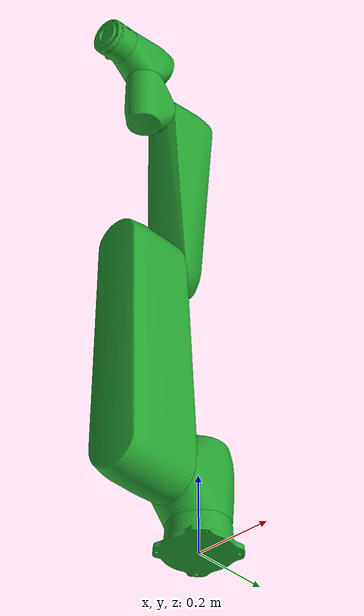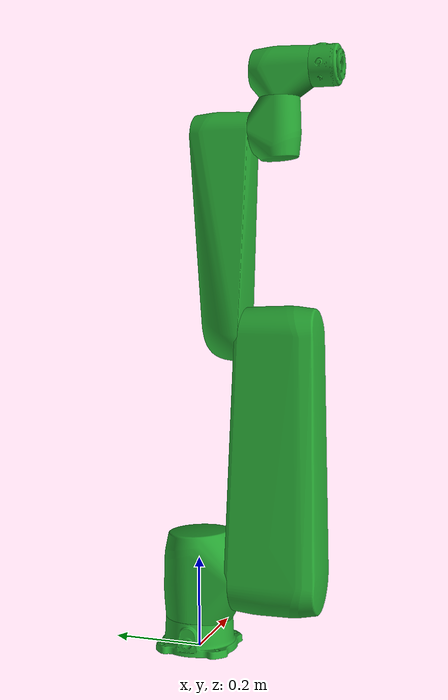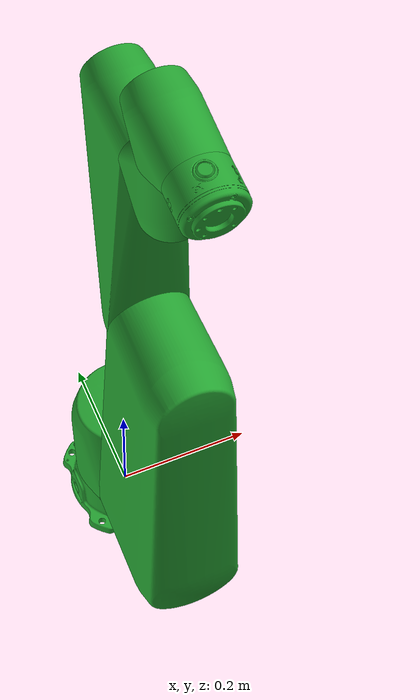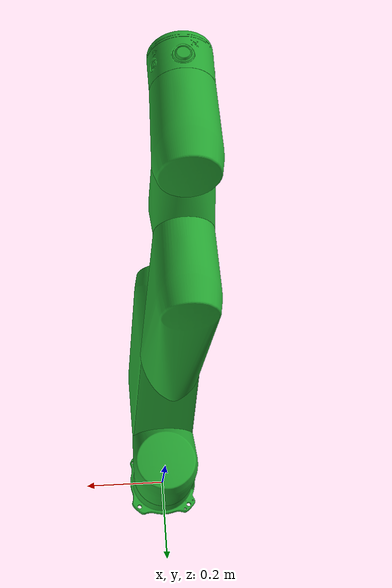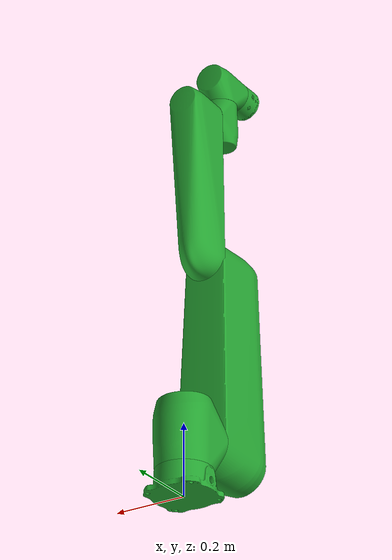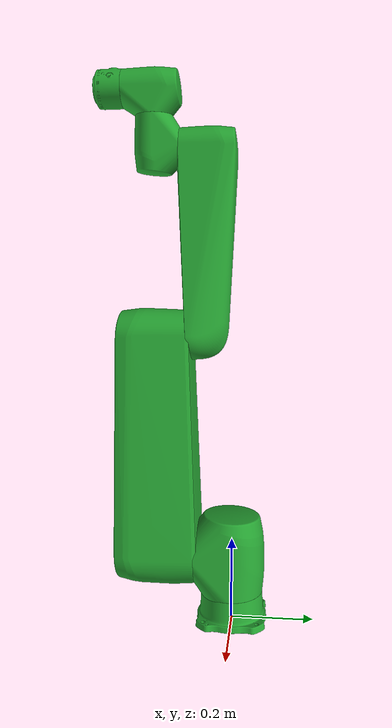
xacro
<?xml version="1.0"?>
<robot xmlns:xacro="http://www.ros.org/wiki/xacro" name="tm14sx">
  <!-- ARGUMENTS -->
  <xacro:arg name="ns" default="" />
  <xacro:arg name="prefix" default="" />
  <xacro:arg name="color" default="emeraldgreen" />
  <xacro:arg name="dae_parse_gzskin" default="false" />
  <!-- default position configurations from YAML file for simulations -->
  <xacro:arg name="initial_positions_file" default="$(find tm_gazebo)/config/initial_positions.yaml"/>

  <!-- Import materials colors -->
  <xacro:include filename="$(find tm_gazebo)/xacro/macro.materials.xacro" />
  <xacro:include filename="$(find tm_gazebo)/xacro/macro.inertial.xacro" />

  <!-- Import TM Cobot: ros2_control macro -->
  <xacro:include filename="$(find tm_gazebo)/xacro/tm.ros2_control.xacro"/>

  <xacro:tm_ros2_control
    name="CobotSystem" prefix="$(arg prefix)" initial_positions_file="$(arg initial_positions_file)"/>

  <!-- world_joint fixes base_link to the gazebo world environment -->
  <link name="world" />
  <joint name="world_joint" type="fixed">
    <origin rpy="0 0 0" xyz="0 0 0"/>
    <parent link="world"/>
    <child link="base_link"/>
  </joint>

  <!-- Import TM Cobot: tm14sx robot description file -->
  <!-- If the user want to use newly generated named robot description file as user_defined.urdf.xacro, -->
  <!-- you must modify 'macro.tm14sx-nominal.urdf.xacro' to 'user_defined.urdf.xacro'  -->
  <xacro:include filename="$(find tm_gazebo)/xacro/macro.tm14sx-nominal.urdf.xacro" />

  <!-- Import TM Cobot: mesh.color.default -->
  <xacro:tm14sx ns="$(arg ns)" prefix="$(arg prefix)" color="$(arg color)" format="obj" dae_parse_gzskin="$(arg dae_parse_gzskin)" />

  <!-- Import Gazebo Fortess definitions + plugin -->
  <xacro:include filename="$(find tm_gazebo)/xacro/tm.gazebo.xacro"/>

  <!-- The Gazebo plugin for ros2_control -->
  <xacro:tm_gazebo ns="$(arg ns)" prefix="$(arg prefix)" />

</robot>

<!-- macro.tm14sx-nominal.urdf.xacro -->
<robot xmlns:xacro="http://www.ros.org/wiki/xacro">

  <xacro:include filename="$(find tm_gazebo)/xacro/macro.inertial.xacro" />

  <xacro:macro name="tm14sx" params="ns prefix color format dae_parse_gzskin
    joint_1_lower_limit:=${radians(-360)}    joint_1_upper_limit:=${radians(360)}
    joint_2_lower_limit:=${radians(-360)}    joint_2_upper_limit:=${radians(360)}
    joint_3_lower_limit:=${radians(-159)}    joint_3_upper_limit:=${radians(159)}
    joint_4_lower_limit:=${radians(-360)}    joint_4_upper_limit:=${radians(360)}
    joint_5_lower_limit:=${radians(-360)}    joint_5_upper_limit:=${radians(360)}
    joint_6_lower_limit:=${radians(-360)}    joint_6_upper_limit:=${radians(360)}
    joint_1_velocity_limit:=${radians(130)}
    joint_2_velocity_limit:=${radians(130)}
    joint_3_velocity_limit:=${radians(210)}
    joint_4_velocity_limit:=${radians(225)}
    joint_5_velocity_limit:=${radians(225)}
    joint_6_velocity_limit:=${radians(450)}
    joint_1_effort_limit:=${350}
    joint_2_effort_limit:=${350}
    joint_3_effort_limit:=${170}
    joint_4_effort_limit:=${45}
    joint_5_effort_limit:=${45}
    joint_6_effort_limit:=${45}
    safety_limits:=false safety_pos_margin:=0.15
    safety_k_position:=20">

    <xacro:property name="damping_factor" value="0.000"/>
    <xacro:property name="d1" value="${damping_factor*0.1}"/>
    <xacro:property name="d2" value="${damping_factor*0.1}"/>
    <xacro:property name="d3" value="${damping_factor*0.1}"/>
    <xacro:property name="d4" value="${damping_factor*0.1}"/>
    <xacro:property name="d5" value="${damping_factor*0.1}"/>
    <xacro:property name="d6" value="${damping_factor*0.1}"/>

    <xacro:property name="friction_factor" value="0.000"/>
    <xacro:property name="f1" value="${friction_factor*0.1}"/>
    <xacro:property name="f2" value="${friction_factor*0.1}"/>
    <xacro:property name="f3" value="${friction_factor*0.1}"/>
    <xacro:property name="f4" value="${friction_factor*0.1}"/>
    <xacro:property name="f5" value="${friction_factor*0.1}"/>
    <xacro:property name="f6" value="${friction_factor*0.1}"/>

    <!-- Inertia parameters -->
    <xacro:property name="mass_0" value="1.0" />
    <xacro:property name="mass_1" value="8.200" />
    <xacro:property name="mass_2" value="15.017" />
    <xacro:property name="mass_3" value="3.329" />
    <xacro:property name="mass_4" value="1.770" />
    <xacro:property name="mass_5" value="1.880" />
    <xacro:property name="mass_6" value="0.340" />

    <xacro:property name="unit_factor" value="0.000001"/>
    <xacro:property name="ixx_1" value="${25963.078*unit_factor}" />
    <xacro:property name="ixx_2" value="${55929.284*unit_factor}" />
    <xacro:property name="ixx_3" value="${4694.5431*unit_factor}" />
    <xacro:property name="ixx_4" value="${2046.0318*unit_factor}" />
    <xacro:property name="ixx_5" value="${2046.0318*unit_factor}" />
    <xacro:property name="ixx_6" value="${250.85804*unit_factor}" />

    <xacro:property name="iyy_1" value="${37671.229*unit_factor}" />
    <xacro:property name="iyy_2" value="${1212610.4*unit_factor}" />
    <xacro:property name="iyy_3" value="${134098.54*unit_factor}" />
    <xacro:property name="iyy_4" value="${3171.8293*unit_factor}" />
    <xacro:property name="iyy_5" value="${3171.8293*unit_factor}" />
    <xacro:property name="iyy_6" value="${252.81701*unit_factor}" />

    <xacro:property name="izz_1" value="${38856.370*unit_factor}" />
    <xacro:property name="izz_2" value="${1231270.0*unit_factor}" />
    <xacro:property name="izz_3" value="${135525.91*unit_factor}" />
    <xacro:property name="izz_4" value="${3478.9518*unit_factor}" />
    <xacro:property name="izz_5" value="${3478.9518*unit_factor}" />
    <xacro:property name="izz_6" value="${312.21304*unit_factor}" />

    <xacro:property name="specified_color_arms" default="false" />
    <xacro:property name="prefix_monochrome_command" default="true" />

    <!-- If other applications conflict with the color definition of URDF, try disable_prefix_color to close it -->
    <xacro:property name="disable_prefix_color" default="false" />
    <xacro:if value="${disable_prefix_color}">
      <prefix_monochrome_command value="false"/>
    </xacro:if>
    <xacro:if value="${format == 'stl'}">
      <specified_color_arms value="true"/>
      <prefix_monochrome_command value="false"/>
    </xacro:if>
    <xacro:if value="${format == 'dae'}">
      <specified_color_arms value="false"/>
      <prefix_monochrome_command value="false"/>
    </xacro:if>
    <xacro:if value="${prefix_monochrome_command}">
      <xacro:tm_materials/>
    </xacro:if>

    <!--LinkDescription-->
    <link name="${prefix}base_link">
      <visual>
        <geometry>
          <mesh filename="file://$(find tm_description)/meshes/tm14s/visual/tm14s-base.${format}" />
        </geometry>
        <xacro:if value="${specified_color_arms}">
          <xacro:tm_material_whitegraphite />
        </xacro:if>
        <xacro:if value="${prefix_monochrome_command}">
          <material name="${color}" />
        </xacro:if>
      </visual>
      <collision>
        <geometry>
          <mesh filename="file://$(find tm_description)/meshes/tm14s/collision/tm14s-base_c.stl" />
        </geometry>
      </collision>
      <xacro:cylinder_inertial_z radius="0.06" length="0.05" mass="${mass_0}">
        <origin rpy="0.000000 0.000000 0.000000" xyz="0.000000 0.000000 0.000000" />
      </xacro:cylinder_inertial_z>
    </link>
    <joint name="${prefix}joint_1" type="revolute">
      <parent link="${prefix}base_link" />
      <child link="${prefix}link_1" />
      <origin rpy="0.000000 -0.000000 0.000000" xyz="0.000000 0.000000 0.165200" />
      <axis xyz="0 0 1" />
      <limit lower="${joint_1_lower_limit}" upper="${joint_1_upper_limit}" velocity="${joint_1_velocity_limit}" effort="${joint_1_effort_limit}" />
      <xacro:if value="${safety_limits}">
        <safety_controller soft_lower_limit="${joint_1_lower_limit + safety_pos_margin}" soft_upper_limit="${joint_1_upper_limit - safety_pos_margin}" k_position="${safety_k_position}" k_velocity="0.0" />
      </xacro:if>
      <dynamics damping="${d1}" friction="${f1}" />
    </joint>
    <link name="${prefix}link_1">
      <visual>
        <geometry>
          <mesh filename="file://$(find tm_description)/meshes/tm14s/visual/tm14s-j1.${format}" />
        </geometry>
        <xacro:if value="${specified_color_arms}">
          <xacro:tm_material_darkolive />
        </xacro:if>
        <xacro:if value="${prefix_monochrome_command}">
          <material name="${color}" />
        </xacro:if>
      </visual>
      <collision>
        <geometry>
          <mesh filename="file://$(find tm_description)/meshes/tm14s/collision/tm14s-j1_c.stl" />
        </geometry>
      </collision>
      <inertial>
        <mass value="${mass_1}" />
        <origin rpy="0.000000 0.000000 0.000000" xyz="0.000000 0.000000 0.000000" />
      <inertia ixx="${ixx_1}" ixy="0.000000" ixz="0.000000" iyy="${iyy_1}" iyz="0.000000" izz="${izz_1}" />
      </inertial>
    </link>
    <joint name="${prefix}joint_2" type="revolute">
      <parent link="${prefix}link_1" />
      <child link="${prefix}link_2" />
      <origin rpy="-1.570796 -1.570796 0.000000" xyz="0.000000 0.000000 0.000000" />
      <axis xyz="0 0 1" />
      <limit lower="${joint_2_lower_limit}" upper="${joint_2_upper_limit}" velocity="${joint_2_velocity_limit}" effort="${joint_2_effort_limit}" />
      <xacro:if value="${safety_limits}">
        <safety_controller soft_lower_limit="${joint_2_lower_limit + safety_pos_margin}" soft_upper_limit="${joint_2_upper_limit - safety_pos_margin}" k_position="${safety_k_position}" k_velocity="0.0" />
      </xacro:if>
      <dynamics damping="${d2}" friction="${f2}" />
    </joint>
    <link name="${prefix}link_2">
      <visual>
        <geometry>
          <mesh filename="file://$(find tm_description)/meshes/tm14s/visual/tm14s-a1.${format}" />
        </geometry>
        <xacro:if value="${specified_color_arms}">
          <xacro:tm_material_darkolive />
        </xacro:if>
        <xacro:if value="${prefix_monochrome_command}">
          <material name="${color}" />
        </xacro:if>
      </visual>
      <collision>
        <geometry>
          <mesh filename="file://$(find tm_description)/meshes/tm14s/collision/tm14s-a1_c.stl" />
        </geometry>
      </collision>
      <inertial>
        <mass value="${mass_2}" />
        <origin rpy="0.000000 0.000000 0.000000" xyz="0.000000 0.000000 0.000000" />
        <inertia ixx="${ixx_2}" ixy="0.000000" ixz="0.000000" iyy="${iyy_2}" iyz="0.000000" izz="${izz_2}" />
      </inertial>
    </link>
    <joint name="${prefix}joint_3" type="revolute">
      <parent link="${prefix}link_2" />
      <child link="${prefix}link_3" />
      <origin rpy="0.000000 -0.000000 0.000000" xyz="0.536100 0.000000 0.000000" />
      <axis xyz="0 0 1" />
      <limit lower="${joint_3_lower_limit}" upper="${joint_3_upper_limit}" velocity="${joint_3_velocity_limit}" effort="${joint_3_effort_limit}" />
      <xacro:if value="${safety_limits}">
        <safety_controller soft_lower_limit="${joint_3_lower_limit + safety_pos_margin}" soft_upper_limit="${joint_3_upper_limit - safety_pos_margin}" k_position="${safety_k_position}" k_velocity="0.0" />
      </xacro:if>
      <dynamics damping="${d3}" friction="${f3}" />
    </joint>
    <link name="${prefix}link_3">
      <visual>
        <geometry>
          <mesh filename="file://$(find tm_description)/meshes/tm14s/visual/tm14s-a2.${format}" />
        </geometry>
        <xacro:if value="${specified_color_arms}">
          <xacro:tm_material_gold />
        </xacro:if>
        <xacro:if value="${prefix_monochrome_command}">
          <material name="${color}" />
        </xacro:if>
      </visual>
      <collision>
        <geometry>
          <mesh filename="file://$(find tm_description)/meshes/tm14s/collision/tm14s-a2_c.stl" />
        </geometry>
      </collision>
      <inertial>
        <mass value="${mass_3}" />
        <origin rpy="0.000000 0.000000 0.000000" xyz="0.000000 0.000000 0.000000" />
        <inertia ixx="${ixx_3}" ixy="0.000000" ixz="0.000000" iyy="${iyy_3}" iyz="0.000000" izz="${izz_3}" />
      </inertial>
    </link>
    <joint name="${prefix}joint_4" type="revolute">
      <parent link="${prefix}link_3" />
      <child link="${prefix}link_4" />
      <origin rpy="0.000000 -0.000000 1.570796" xyz="0.432400 0.000000 -0.181800" />
      <axis xyz="0 0 1" />
      <limit lower="${joint_4_lower_limit}" upper="${joint_4_upper_limit}" velocity="${joint_4_velocity_limit}" effort="${joint_4_effort_limit}" />
      <xacro:if value="${safety_limits}">
        <safety_controller soft_lower_limit="${joint_4_lower_limit + safety_pos_margin}" soft_upper_limit="${joint_4_upper_limit - safety_pos_margin}" k_position="${safety_k_position}" k_velocity="0.0" />
      </xacro:if>
      <dynamics damping="${d4}" friction="${f4}" />
    </joint>
    <link name="${prefix}link_4">
      <visual>
        <geometry>
          <mesh filename="file://$(find tm_description)/meshes/tm14s/visual/tm14s-j5.${format}" />
        </geometry>
        <xacro:if value="${specified_color_arms}">
          <xacro:tm_material_darkolive />
        </xacro:if>
        <xacro:if value="${prefix_monochrome_command}">
          <material name="${color}" />
        </xacro:if>
      </visual>
      <collision>
        <geometry>
          <mesh filename="file://$(find tm_description)/meshes/tm14s/collision/tm14s-j5_c.stl" />
        </geometry>
      </collision>
      <inertial>
        <mass value="${mass_4}" />
        <origin rpy="0.000000 0.000000 0.000000" xyz="0.000000 0.000000 0.000000"/>

        <inertia ixx="${ixx_4}" ixy="0.000000" ixz="0.000000" iyy="${iyy_4}" iyz="0.000000" izz="${izz_4}" />
      </inertial>
    </link>
    <joint name="${prefix}joint_5" type="revolute">
      <parent link="${prefix}link_4" />
      <child link="${prefix}link_5" />
      <origin rpy="1.570796 -0.000000 0.000000" xyz="0.000000 -0.131500 0.000000" />
      <axis xyz="0 0 1" />
      <limit lower="${joint_5_lower_limit}" upper="${joint_5_upper_limit}" velocity="${joint_5_velocity_limit}" effort="${joint_5_effort_limit}" />
      <xacro:if value="${safety_limits}">
        <safety_controller soft_lower_limit="${joint_5_lower_limit + safety_pos_margin}" soft_upper_limit="${joint_5_upper_limit - safety_pos_margin}" k_position="${safety_k_position}" k_velocity="0.0" />
      </xacro:if>
      <dynamics damping="${d5}" friction="${f5}" />
    </joint>
    <link name="${prefix}link_5">
      <visual>
        <geometry>
          <mesh filename="file://$(find tm_description)/meshes/tm14s/visual/tm14s-j6.${format}" />
        </geometry>
        <xacro:if value="${specified_color_arms}">
          <xacro:tm_material_darkolive />
        </xacro:if>
        <xacro:if value="${prefix_monochrome_command}">
          <material name="${color}" />
        </xacro:if>
      </visual>
      <collision>
        <geometry>
          <mesh filename="file://$(find tm_description)/meshes/tm14s/collision/tm14s-j6_c.stl" />
        </geometry>
      </collision>
      <inertial>
        <mass value="${mass_5}" />
        <origin rpy="0.000000 0.000000 0.000000" xyz="0.000000 0.000000 0.000000" />
        <inertia ixx="${ixx_5}" ixy="0.000000" ixz="0.000000" iyy="${iyy_5}" iyz="0.000000" izz="${izz_5}" />
      </inertial>
    </link>
    <joint name="${prefix}joint_6" type="revolute">
      <parent link="${prefix}link_5" />
      <child link="${prefix}link_6" />
      <origin rpy="1.570796 -0.000000 0.000000" xyz="0.000000 -0.134950 0.000000" />
      <axis xyz="0 0 1" />
      <limit lower="${joint_6_lower_limit}" upper="${joint_6_upper_limit}" velocity="${joint_6_velocity_limit}" effort="${joint_6_effort_limit}" />
      <xacro:if value="${safety_limits}">
        <safety_controller soft_lower_limit="${joint_6_lower_limit + safety_pos_margin}" soft_upper_limit="${joint_6_upper_limit - safety_pos_margin}" k_position="${safety_k_position}" k_velocity="0.0" />
      </xacro:if>
      <dynamics damping="${d6}" friction="${f6}" />
    </joint>
    <link name="${prefix}link_6">
      <visual>
        <geometry>
          <mesh filename="file://$(find tm_description)/meshes/tm5s/visual/tm5s-iox.${format}" />
        </geometry>
        <xacro:if value="${specified_color_arms}">
          <xacro:tm_material_purewhite />
        </xacro:if>
        <xacro:if value="${prefix_monochrome_command}">
          <material name="${color}" />
        </xacro:if>
      </visual>
      <collision>
        <geometry>
          <mesh filename="file://$(find tm_description)/meshes/tm5s/collision/tm5s-iox_c.stl" />
        </geometry>
      </collision>
      <inertial>
        <mass value="${mass_6}" />
        <origin rpy="0.000000 0.000000 0.000000" xyz="0.000000 0.000000 0.000000" />
        <inertia ixx="${ixx_6}" ixy="0.000000" ixz="0.000000" iyy="${iyy_6}" iyz="0.000000" izz="${izz_6}" />
      </inertial>
    </link>

    <xacro:unless value="${dae_parse_gzskin}">
    <!-- gazebo material to the link -->
    <gazebo reference="base_link">
      <visual>
        <material>
          <ambient>0.941 0.929 0.882 1</ambient>
          <diffuse>0.941 0.929 0.882 1</diffuse>
          <specular>0.941 0.929 0.882 1</specular>
        </material>
      </visual>
    </gazebo>

    <gazebo reference="link_1">
      <visual>
        <material>
          <ambient>0.400 0.400 0.400 1</ambient>
          <diffuse>0.400 0.400 0.400 1</diffuse>
          <specular>0.400 0.400 0.400 1</specular>
        </material>
      </visual>
    </gazebo>

    <gazebo reference="link_2">
      <visual>
        <material>
          <ambient>0.400 0.400 0.400 1</ambient>
          <diffuse>0.400 0.400 0.400 1</diffuse>
          <specular>0.400 0.400 0.400 1</specular>
        </material>
      </visual>
    </gazebo>

    <gazebo reference="link_3">
      <visual>
        <material>
          <ambient>0.400 0.400 0.400 1</ambient>
          <diffuse>0.400 0.400 0.400 1</diffuse>
          <specular>0.400 0.400 0.400 1</specular>
        </material>
      </visual>
    </gazebo>

    <gazebo reference="link_4">
      <visual>
        <material>
          <ambient>0.400 0.400 0.400 1</ambient>
          <diffuse>0.400 0.400 0.400 1</diffuse>
          <specular>0.400 0.400 0.400 1</specular>
        </material>
      </visual>
    </gazebo>

    <gazebo reference="link_5">
      <visual>
        <material>
          <ambient>0.400 0.400 0.400 1</ambient>
          <diffuse>0.400 0.400 0.400 1</diffuse>
          <specular>0.400 0.400 0.400 1</specular>
        </material>
      </visual>
    </gazebo>

    <gazebo reference="link_6">
      <visual>
        <material>
          <ambient>0.941 0.929 0.882 1</ambient>
          <diffuse>0.941 0.929 0.882 1</diffuse>
          <specular>0.941 0.929 0.882 1</specular>
        </material>
      </visual>
    </gazebo>
    </xacro:unless>

    <!-- 'base' frame - base_link to base/World Coordinates transform -->
    <link name="${prefix}base" />
    <joint name="${prefix}base_link-base" type="fixed">
      <parent link="${prefix}base_link" />
      <child link="${prefix}base" />
      <origin rpy="0.000000 0.000000 0.000000" xyz="0.000000 0.000000 0.000000" />
    </joint>

    <!-- 'flange' frame - attachment point for EEF models -->
    <link name="${prefix}flange" />
    <joint name="${prefix}joint_6-flange" type="fixed">
      <parent link="${prefix}link_6" />
      <child link="${prefix}flange" />
      <origin rpy="0.000000 0.000000 0.000000" xyz="0.000000 0.000000 0.000000" />
    </joint>

    <!-- 'tool0' frame - all-zeros tool frame -->
    <link name="${prefix}tool0" />
    <joint name="${prefix}flange-tool0" type="fixed">
      <parent link="${prefix}flange" />
      <child link="${prefix}tool0" />
      <origin rpy="0.000000 0.000000 0.000000" xyz="0.000000 0.000000 0.000000" />
      <dynamics damping="0.0" friction="0.0"/>
    </joint>
    <!-- LinkDescription -->

  </xacro:macro>

</robot>
